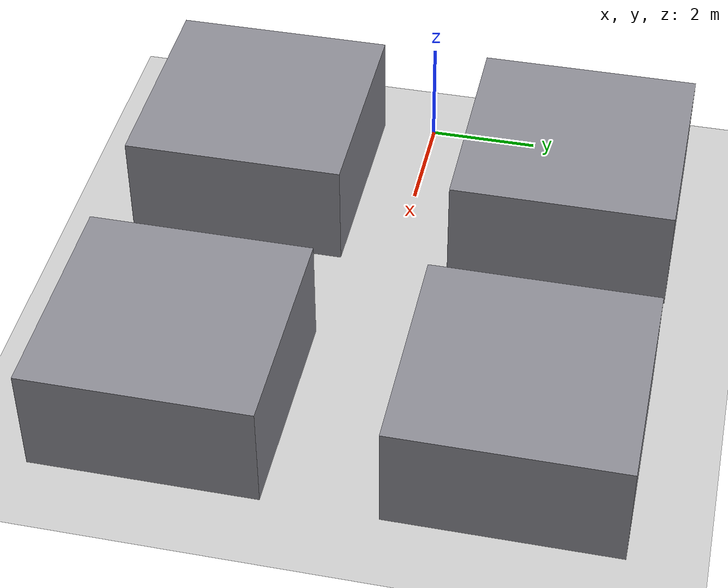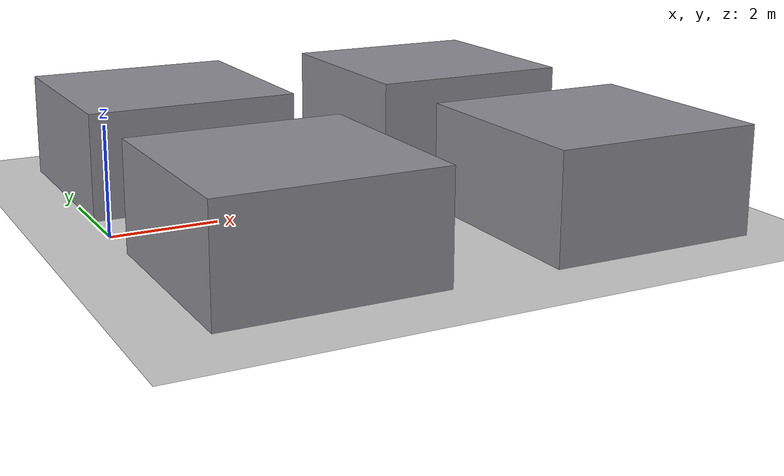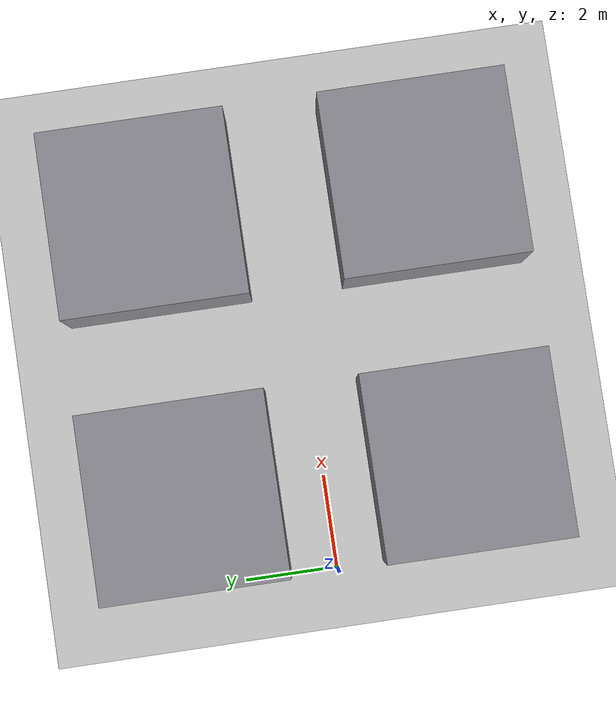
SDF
<?xml version="1.0" ?>
<sdf version="1.6">
  <world name="default">
    <physics type="ode"><max_step_size>0.01</max_step_size><real_time_factor>1</real_time_factor><real_time_update_rate>100</real_time_update_rate></physics>
    <gui><camera name="user_camera"><pose>5 -12 10 0 0.65 1.5707</pose></camera></gui>
    <light name="sun" type="directional"><pose>0 0 10 0 0 0</pose><diffuse>0.8 0.8 0.8 1</diffuse><specular>0.2 0.2 0.2 1</specular><direction>-0.3 0.2 -1</direction></light>
    <include><uri>model://ground_plane</uri></include>
    <model name="north_west"><static>true</static><pose>2 3 1 0 0 0</pose><link name="block"><collision name="collision"><geometry><box><size>4 4 2</size></box></geometry></collision><visual name="visual"><geometry><box><size>4 4 2</size></box></geometry><material><ambient>0.55 0.55 0.58 1</ambient><diffuse>0.55 0.55 0.58 1</diffuse></material></visual></link></model>
    <model name="south_west"><static>true</static><pose>2 -3 1 0 0 0</pose><link name="block"><collision name="collision"><geometry><box><size>4 4 2</size></box></geometry></collision><visual name="visual"><geometry><box><size>4 4 2</size></box></geometry><material><ambient>0.55 0.55 0.58 1</ambient><diffuse>0.55 0.55 0.58 1</diffuse></material></visual></link></model>
    <model name="north_east"><static>true</static><pose>8 3 1 0 0 0</pose><link name="block"><collision name="collision"><geometry><box><size>4 4 2</size></box></geometry></collision><visual name="visual"><geometry><box><size>4 4 2</size></box></geometry><material><ambient>0.55 0.55 0.58 1</ambient><diffuse>0.55 0.55 0.58 1</diffuse></material></visual></link></model>
    <model name="south_east"><static>true</static><pose>8 -3 1 0 0 0</pose><link name="block"><collision name="collision"><geometry><box><size>4 4 2</size></box></geometry></collision><visual name="visual"><geometry><box><size>4 4 2</size></box></geometry><material><ambient>0.55 0.55 0.58 1</ambient><diffuse>0.55 0.55 0.58 1</diffuse></material></visual></link></model>
  </world>
</sdf>
